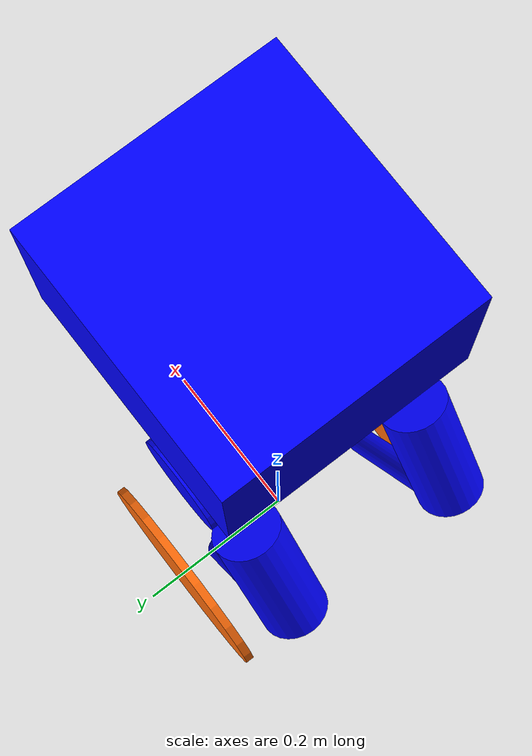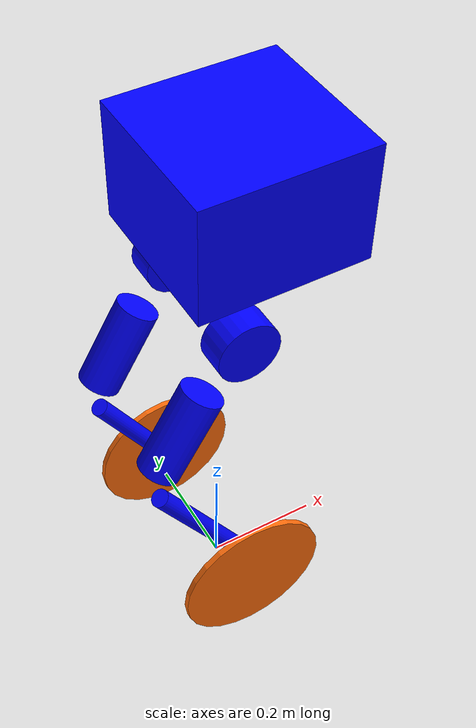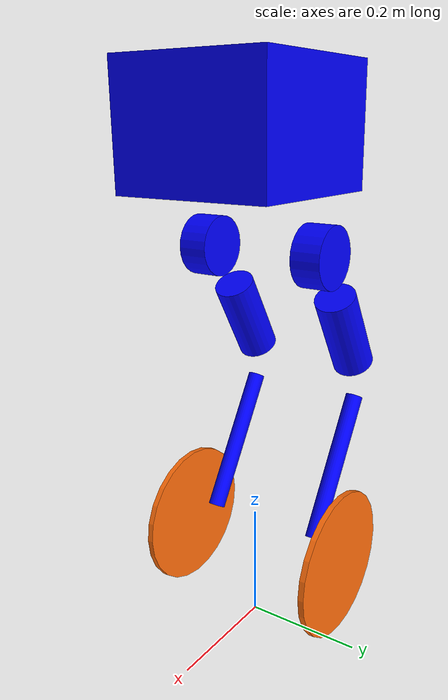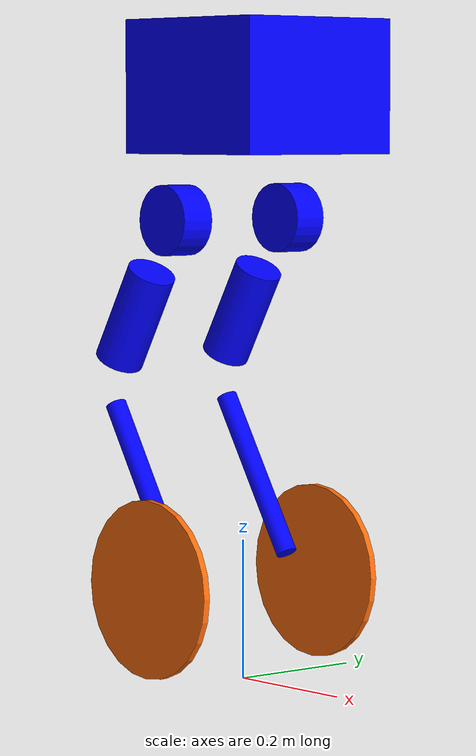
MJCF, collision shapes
<mujoco model="wheel_foot">
    <compiler angle="radian" meshdir="../meshes/" />
    <size njmax="500" nconmax="100" />

    <default>
        <light castshadow="false" diffuse="1 1 1" />
        <camera fovy="60"/>
        <default class="visual">
            <geom contype="0" conaffinity="0" group="1" type="mesh" rgba="0.9 0.9 0.9 1.0"/>
        </default>
        <joint armature="0.01" damping="0.01"/>
        <geom contype="1" conaffinity="1" condim="6" friction="1.0 0.005 0.0001" rgba="0.5 0.6 0.7 0.0" margin="0.001" group="0" solref="0.01 1" solimp="0.9 0.95 0.001" />
    </default>
    <visual>
        <rgba com="0.502 1.0 0 0.5" contactpoint="1.0 1.0 0.6 0.4" contactforce="0.2 0.98 0.2 0.8"/>
        <scale com="0.2" forcewidth="0.05" contactwidth="0.10" contactheight="0.04"/>
    </visual>

    <option timestep="0.001"/>

    <asset>
        <mesh name="base_Link" file="../meshes/wheel_foot/base_Link.STL" />
        <mesh name="abad_L_Link" file="../meshes/wheel_foot/abad_L_Link.STL" />
        <mesh name="hip_L_Link" file="../meshes/wheel_foot/hip_L_Link.STL" />
        <mesh name="knee_L_Link" file="../meshes/wheel_foot/knee_L_Link.STL" />
        <mesh name="wheel_L_Link" file="../meshes/wheel_foot/wheel_L_Link.STL" />
        <mesh name="abad_R_Link" file="../meshes/wheel_foot/abad_R_Link.STL" />
        <mesh name="hip_R_Link" file="../meshes/wheel_foot/hip_R_Link.STL" />
        <mesh name="knee_R_Link" file="../meshes/wheel_foot/knee_R_Link.STL" />
        <mesh name="wheel_R_Link" file="../meshes/wheel_foot/wheel_R_Link.STL" />
    </asset>

    <worldbody>
        <body name="base_Link" pos="0 0 0.92">
            <camera name="tracking" pos="0.846 -1.3 0.316" xyaxes="0.866 0.500 0.000 -0.171 0.296 0.940" mode="trackcom"/>
            <inertial pos="0.0457123 0.000139854 -0.163809" quat="0.972578 -0.00615364 -0.232461 0.00398682" mass="9.595" diaginertia="0.154712 0.11093 0.0846371" />
            <joint type="free" limited="false" damping="0.0000" stiffness="0.0000" armature="0"/>
            <site name="imu" pos="0 0 0"/>
            <geom class="visual" rgba="0.79216 0.81961 0.93333 1" mesh="base_Link" />
            <geom name="base_collision" size="0.135 0.13 0.095" pos="0.03 0 -0.072" type="box" rgba="0 0 1 0" />

            <body name="abad_L_Link" pos="0.05556 0.105 -0.2602">
                <inertial pos="-0.06977 0.04479 0.00057" quat="0.595024 0.579772 0.394141 0.393019" mass="1.469" diaginertia="0.00252289 0.00208104 0.00139163" />
                <joint name="abad_L_Joint" pos="0 0 0" axis="1 0 0" limited="true" range="-0.38397 1.39626" armature="0.07488131235840001"/>
                <geom class="visual" rgba="0.79216 0.81961 0.93333 1" mesh="abad_L_Link" />
                <geom name="abad_L_collision" type="cylinder" pos="-0.08 0 0" euler="1.57 0 0" size="0.05 0.025" rgba="0 0 1 0" />

                <body name="hip_L_Link" pos="-0.077 0.0205 0">
                    <inertial pos="-0.02869 -0.0477 -0.03992" quat="0.853885 0.192797 0.226903 0.426877" mass="2.3" diaginertia="0.0233264 0.0230229 0.00277548" />
                    <joint name="hip_L_Joint" pos="0 0 0" axis="0 1 0" limited="true" range="-1.01229 1.39626" armature="0.07488131235840001"/>
                    <geom class="visual" rgba="1 1 1 1" mesh="hip_L_Link" />
                    <geom name="hip_L_collision" type="cylinder" pos="-0.1 -0.025 -0.14" euler="0 0.53 0" size="0.035 0.075" rgba="0 0 1 0" />

                    <body name="knee_L_Link" pos="-0.15 -0.0205 -0.25981">
                        <inertial pos="0.11913 0.01106 -0.20363" quat="0.687012 -0.159981 -0.201582 0.679548" mass="1.49" diaginertia="0.0177107 0.0171855 0.001015" />
                        <joint name="knee_L_Joint" pos="0 0 0" axis="0 -1 0" limited="true" range="-0.872665 1.36136" armature="0.07488131235840001"/>
                        <geom class="visual" rgba="0.79216 0.81961 0.93333 1" mesh="knee_L_Link"/>
                        <geom name="knee_L_collision" type="cylinder" pos="0.078 0 -0.12" euler="0 -0.55 0" size="0.015 0.13" rgba ="0 0 1 0"/>

                        <body name="wheel_L_Link" pos="0.15 0.0435 -0.25981">
                            <inertial pos="3e-05 0.00807 -2e-05" quat="0.683013 0.183016 0.183017 0.683011" mass="1.08" diaginertia="0.00974272 0.00515568 0.00515344" />
                            <joint name="wheel_L_Joint" pos="0 0 0" axis="0 1 0" limited="true" range="-1000000 1000000" frictionloss="0.01" armature="0.000215"/>
                            <geom class="visual" rgba="0.26667 0.26667 0.26667 1" mesh="wheel_L_Link" />
                            <geom name="wheel_L_collision" pos="0.0 0.008 0.0" size="0.127 0.005" quat="0.707107 0.707107 0 0" type="cylinder" rgba="1 0.423529 0.0392157 1" />
                        </body>
                    </body>
                </body>
            </body>
            <body name="abad_R_Link" pos="0.05556 -0.105 -0.2602">
                <inertial pos="-0.06977 -0.04479 0.00057" quat="0.393019 0.394141 0.579772 0.595024" mass="1.469" diaginertia="0.00252289 0.00208104 0.00139163" />
                <joint name="abad_R_Joint" pos="0 0 0" axis="1 0 0" limited="true" range="-1.39626 0.38397" armature="0.07488131235840001"/>
                <geom class="visual" rgba="0.79216 0.81961 0.93333 1" mesh="abad_R_Link" />
                <geom name="abad_R_collision" type="cylinder" pos="-0.08 0 0" euler="1.57 0 0" size="0.05 0.025" rgba="0 0 1 0" />

                <body name="hip_R_Link" pos="-0.077 -0.0205 0">
                    <inertial pos="-0.02869 0.0477 -0.03992" quat="0.426877 0.226903 0.192797 0.853885" mass="2.3" diaginertia="0.0233264 0.0230229 0.00277548" />
                    <joint name="hip_R_Joint" pos="0 0 0" axis="0 -1 0" limited="true" range="-1.39626 1.01229" armature="0.07488131235840001"/>
                    <geom class="visual" rgba="1 1 1 1" mesh="hip_R_Link" />
                    <geom name="hip_R_collision" type="cylinder" pos="-0.10 0.025 -0.14" euler="0 0.53 0" size="0.035 0.075" rgba="0 0 1 0" />

                    <body name="knee_R_Link" pos="-0.15 0.0205 -0.25981">
                        <inertial pos="0.11913 -0.01106 -0.20363" quat="0.679548 -0.201582 -0.159981 0.687012" mass="1.49" diaginertia="0.0177107 0.0171855 0.001015" />
                        <joint name="knee_R_Joint" pos="0 0 0" axis="0 1 0" limited="true" range="-1.36136 0.872665" armature="0.07488131235840001"/>
                        <geom class="visual" rgba="0.79216 0.81961 0.93333 1" mesh="knee_R_Link" />
                        <geom name="knee_R_collision" type="cylinder" pos="0.078 0 -0.12" euler="0 -0.55 0" size="0.015 0.13" rgba ="0 0 1 0"/>

                        <body name="wheel_R_Link" pos="0.15 -0.0435 -0.25981">
                            <inertial pos="3e-05 -0.00807 -2e-05" quat="0.683011 0.183017 0.183016 0.683013" mass="1.08" diaginertia="0.00974272 0.00515568 0.00515344" />
                            <joint name="wheel_R_Joint" pos="0 0 0" axis="0 1 0" limited="true" range="-1000000 1000000" frictionloss="0.01" armature="0.000215"/>
                            <geom class="visual" rgba="0.26667 0.26667 0.26667 1" mesh="wheel_R_Link" />
                            <geom name="wheel_R_collision" pos="0.0 -0.008 0.0" size="0.127 0.005" quat="0.707107 0.707107 0 0" type="cylinder" rgba="1 0.423529 0.0392157 1" />
                        </body>
                    </body>
                </body>
            </body>
        </body>
    </worldbody>

    <actuator>
        <motor name="abad_L_Joint"   gear="18.6624"  joint="abad_L_Joint"  ctrllimited='true' ctrlrange='-80 80'/>
        <motor name="hip_L_Joint"    gear="18.6624"  joint="hip_L_Joint"   ctrllimited='true' ctrlrange='-80 80'/>
        <motor name="knee_L_Joint"   gear="18.6624"  joint="knee_L_Joint"  ctrllimited='true' ctrlrange='-80 80'/>
        <motor name="wheel_L_Joint"  gear="7"  joint="wheel_L_Joint" ctrllimited='true' ctrlrange='-40 40'/>
        <motor name="abad_R_Joint"   gear="18.6624"  joint="abad_R_Joint"  ctrllimited='true' ctrlrange='-80 80' />
        <motor name="hip_R_Joint"    gear="18.6624"  joint="hip_R_Joint"   ctrllimited='true' ctrlrange='-80 80' />
        <motor name="knee_R_Joint"   gear="18.6624"  joint="knee_R_Joint"  ctrllimited='true' ctrlrange='-80 80'/>
        <motor name="wheel_R_Joint"  gear="7"  joint="wheel_R_Joint" ctrllimited='true' ctrlrange='-40 40'/>
    </actuator>

    <sensor>
        <framequat name="imu_quat" objtype="site" objname="imu"/>
        <gyro name="imu_gyro" site="imu"/>
        <accelerometer name="imu_acc" site="imu"/>
        <jointpos name="abad_L_pos"    joint="abad_L_Joint" />
        <jointpos name="hip_L_pos"     joint="hip_L_Joint" />
        <jointpos name="knee_L_pos"    joint="knee_L_Joint" />
        <jointpos name="wheel_L_pos"   joint="ankle_L_Joint" />
        <jointpos name="abad_R_pos"    joint="abad_R_Joint" />
        <jointpos name="hip_R_pos"     joint="hip_R_Joint" />
        <jointpos name="knee_R_pos"    joint="knee_R_Joint" />
        <jointpos name="wheel_R_pos"   joint="ankle_R_Joint" />

        <jointvel name="abad_L_vel"    joint="abad_L_Joint" />
        <jointvel name="hip_L_vel"     joint="hip_L_Joint" />
        <jointvel name="knee_L_vel"    joint="knee_L_Joint" />
        <jointvel name="wheel_L_vel"   joint="ankle_L_Joint" />
        <jointvel name="abad_R_vel"    joint="abad_R_Joint" />
        <jointvel name="hip_R_vel"     joint="hip_R_Joint" />
        <jointvel name="knee_R_vel"    joint="knee_R_Joint" />
        <jointvel name="wheel_R_vel"   joint="ankle_R_Joint" />

        <jointactuatorfrc name="abad_L_tau"    joint="abad_L_Joint" />
        <jointactuatorfrc name="hip_L_tau"     joint="hip_L_Joint" />
        <jointactuatorfrc name="knee_L_tau"    joint="knee_L_Joint" />
        <jointactuatorfrc name="wheel_L_tau"   joint="ankle_L_Joint" />
        <jointactuatorfrc name="abad_R_tau"    joint="abad_R_Joint" />
        <jointactuatorfrc name="hip_R_tau"     joint="hip_R_Joint" />
        <jointactuatorfrc name="knee_R_tau"    joint="knee_R_Joint" />
        <jointactuatorfrc name="wheel_R_tau"   joint="ankle_R_Joint" />

        <touch name="L_contact_sensor" site="L_touch" />
        <touch name="R_contact_sensor" site="R_touch" />

        <!-- Ground Truth -->
        <framepos name="frame_pos" objtype="site" objname="imu" />
        <framequat name="frame_quat" objtype="site" objname="imu" />
        <framelinvel name="frame_linvel" objtype= "site" objname="imu"/>
        <frameangvel name="frame_angvel" objtype= "site" objname="imu"/>
        <framelinacc name="frame_linacc" objtype= "site" objname="imu"/>
        <frameangacc name="frame_angacc" objtype= "site" objname="imu"/>
    </sensor>

    <keyframe>
        <key name="home" qpos="0 0 0.55
                                  1 0 0 0
                                  0 0.58 1.35 -0.8
                                  0 -0.58 -1.35 -0.8"/>

    </keyframe>

</mujoco>
